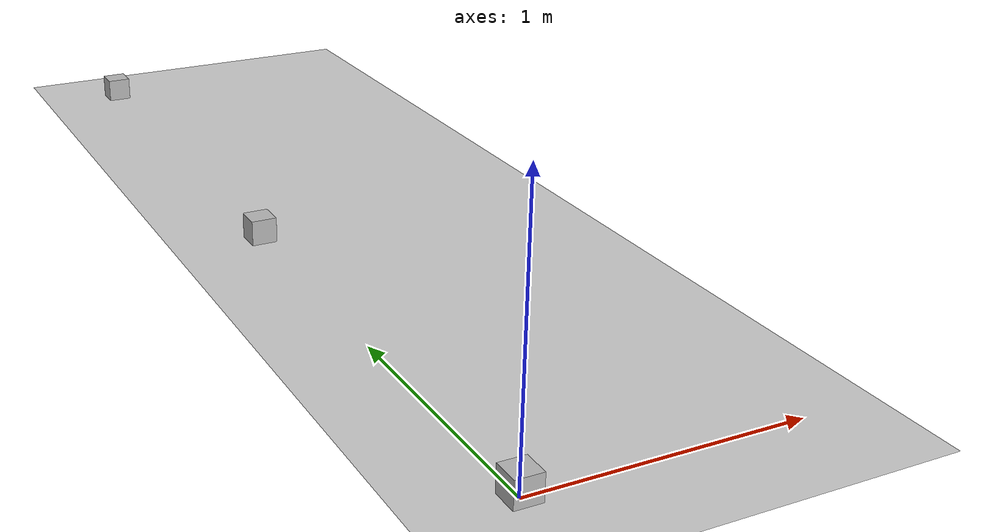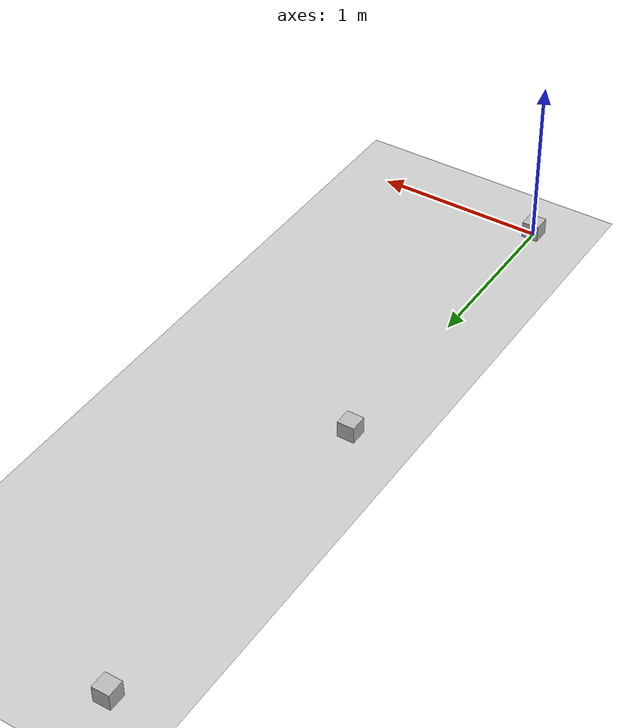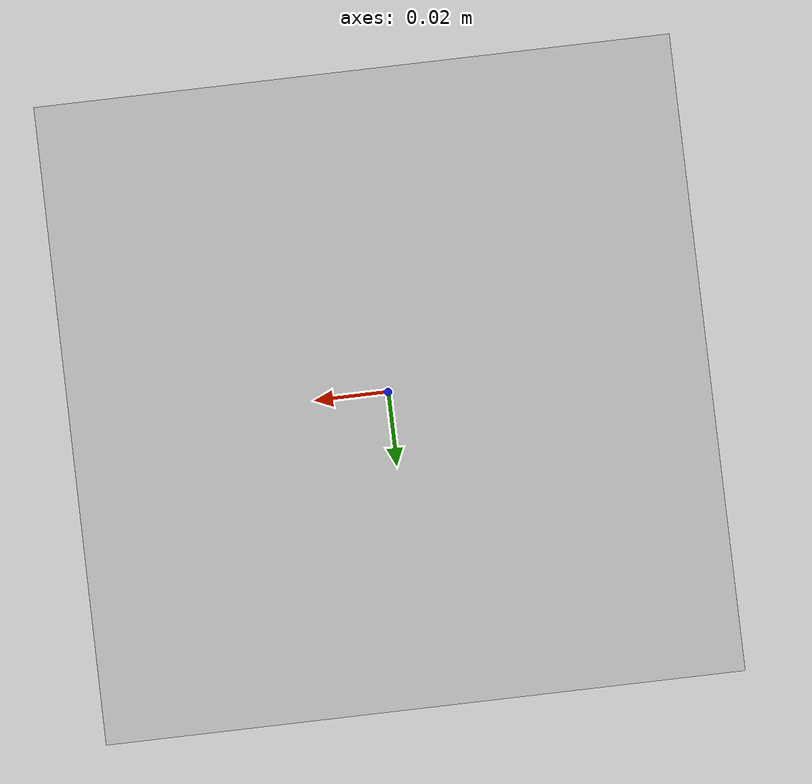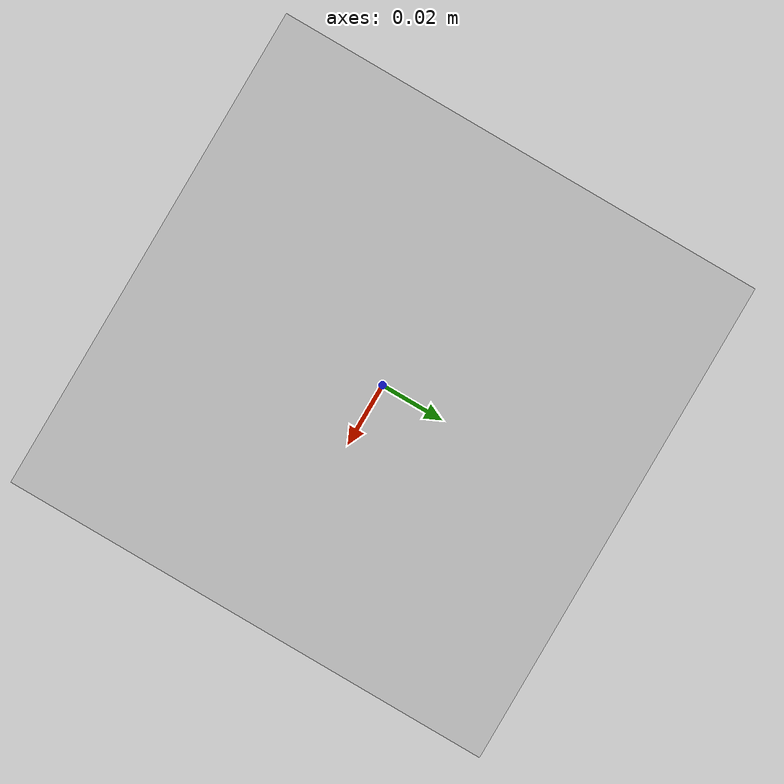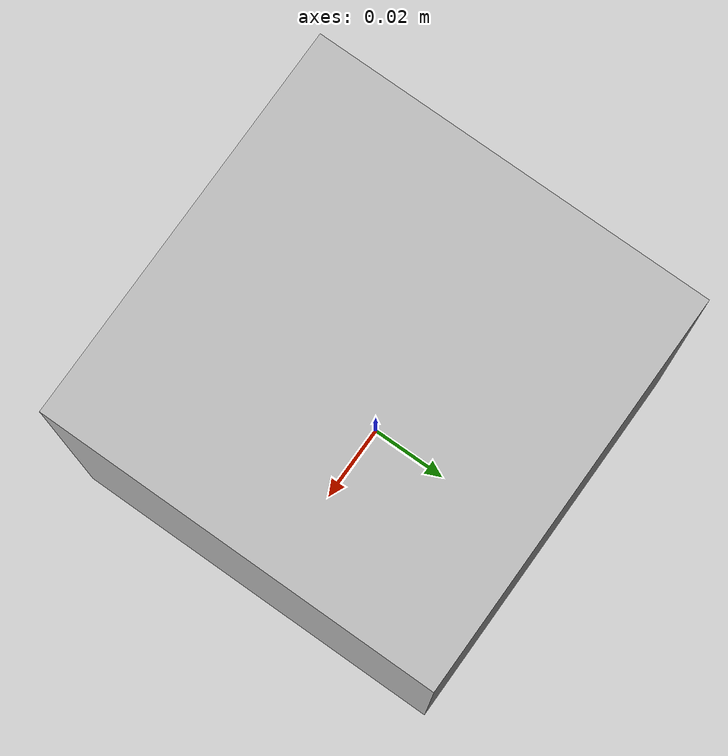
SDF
<?xml version="1.0" ?>
<sdf version="1.6">
  <world name="default">

  <!-- Light Source -->
  <light type="directional" name="sun">
    <cast_shadows>true</cast_shadows>
    <pose>0 0 0 0.0 0.0 0.0</pose>
    <diffuse>1.0 1.0 1.0 1.0</diffuse>
    <specular>0.2 0.2 0.2 1</specular>
    <direction>-1.0 0.0 -0.2</direction>
  </light>

    <scene>
      <ambient>0.5 0.6 0.7 0.8</ambient>
      <grid>0</grid>
      <origin_visual>0</origin_visual>
    </scene>

    <!-- A ground plane -->
    <model name="ground_plane">
      <static>true</static>
      <link name="link">
        <collision name="collision">
          <geometry>
            <plane>
              <normal>0 0 1</normal>
              <size>100 100</size>
            </plane>
          </geometry>
          <surface>
            <friction>
              <ode>
                <mu>100</mu>
                <mu2>50</mu2>
              </ode>
            </friction>
          </surface>
        </collision>
        <visual name="visual">
          <cast_shadows>false</cast_shadows>
          <geometry>
            <plane>
              <normal>0 0 1</normal>
              <size>100 100</size>
            </plane>
          </geometry>
          <plugin name="ssao" filename="libAmbientOcclusionVisualPlugin.so"/>
        </visual>
      </link>
    </model>

    <!-- camera model with lens flare plugin -->
    <model name="camera_lensflare">
      <static>true</static>
      <pose>0 0 0.05 0 0 0</pose>
      <link name="link">
        <visual name="visual">
          <geometry>
            <box>
              <size>0.1 0.1 0.1</size>
            </box>
          </geometry>
        </visual>
        <sensor name="camera_sensor_lensflare" type="camera">
          <camera>
            <horizontal_fov>0.78539816339744828</horizontal_fov>
            <image>
              <width>640</width>
              <height>480</height>
            </image>
            <clip>
              <near>0.1</near>
              <far>100</far>
            </clip>
          </camera>
          <always_on>1</always_on>
          <update_rate>30</update_rate>
          <visualize>true</visualize>
          <plugin name="lensflare" filename="libLensFlareSensorPlugin.so"/>
        </sensor>
      </link>
    </model>

    <!-- camera model with lens flare plugin and scale applied -->
    <model name="camera_lensflare_scaled">
      <static>true</static>
      <pose>0 0 0.05 0 0 0</pose>
      <link name="link">
        <visual name="visual">
          <geometry>
            <box>
              <size>0.1 0.1 0.1</size>
            </box>
          </geometry>
        </visual>
        <sensor name="camera_sensor_lensflare_scaled" type="camera">
          <camera>
            <horizontal_fov>0.78539816339744828</horizontal_fov>
            <image>
              <width>320</width>
              <height>240</height>
            </image>
            <clip>
              <near>0.1</near>
              <far>100</far>
            </clip>
          </camera>
          <always_on>1</always_on>
          <update_rate>30</update_rate>
          <visualize>true</visualize>
          <plugin name="lensflare" filename="libLensFlareSensorPlugin.so">
            <scale>0.1</scale>
          </plugin>
        </sensor>
      </link>
    </model>

    <!-- wide-angle camera model with lens flare plugin -->
    <model name="wide_angle_camera_lensflare">
      <static>true</static>
      <pose>0 2 0.05 0 0 0</pose>
      <link name="link">
        <visual name="visual">
          <geometry>
            <box>
              <size>0.1 0.1 0.1</size>
            </box>
          </geometry>
        </visual>
        <sensor name="camera" type="wideanglecamera">
          <camera>
            <horizontal_fov>1.047</horizontal_fov>
            <image>
              <width>320</width>
              <height>240</height>
            </image>
            <clip>
              <near>0.1</near>
              <far>100</far>
            </clip>
            <lens>
              <type>gnomonical</type>
              <scale_to_hfov>true</scale_to_hfov>
              <cutoff_angle>1.5707</cutoff_angle>
              <env_texture_size>512</env_texture_size>
            </lens>
          </camera>
          <always_on>1</always_on>
          <update_rate>30</update_rate>
          <visualize>true</visualize>
          <plugin name="lensflare" filename="libLensFlareSensorPlugin.so"/>
        </sensor>
      </link>
    </model>

    <!-- multi-camera model with lens flare plugin -->
    <model name="multi_camera_lensflare">
      <static>true</static>
      <pose>0 4 0.05 0 0 0</pose>
      <link name="link">
        <visual name="visual">
          <geometry>
            <box>
              <size>0.1 0.1 0.1</size>
            </box>
          </geometry>
        </visual>
        <sensor type="multicamera" name="stereo_camera">
          <update_rate>30.0</update_rate>
          <camera name="left">
            <horizontal_fov>1.3962634</horizontal_fov>
            <image>
              <width>800</width>
              <height>800</height>
              <format>R8G8B8</format>
            </image>
            <clip>
              <near>0.02</near>
              <far>300</far>
            </clip>
          </camera>
          <camera name="right">
            <pose>0 -0.07 0 0 0 0</pose>
            <horizontal_fov>1.3962634</horizontal_fov>
            <image>
              <width>800</width>
              <height>800</height>
              <format>R8G8B8</format>
            </image>
            <clip>
              <near>0.02</near>
              <far>300</far>
            </clip>
          </camera>
          <visualize>true</visualize>
          <plugin name="lensflare" filename="libLensFlareSensorPlugin.so"/>
        </sensor>
      </link>
    </model>

  </world>
</sdf>
